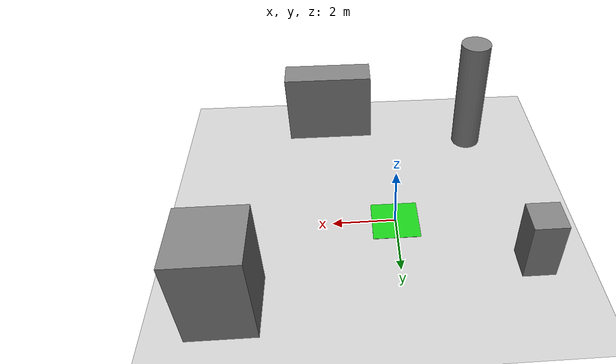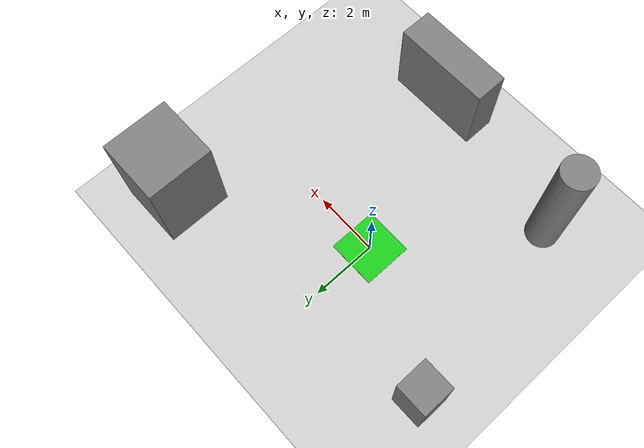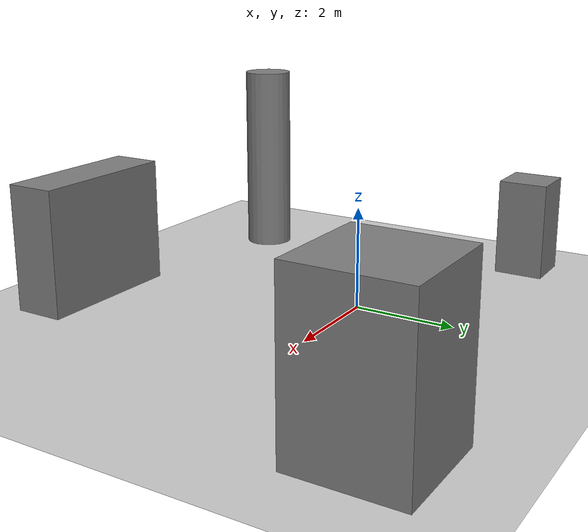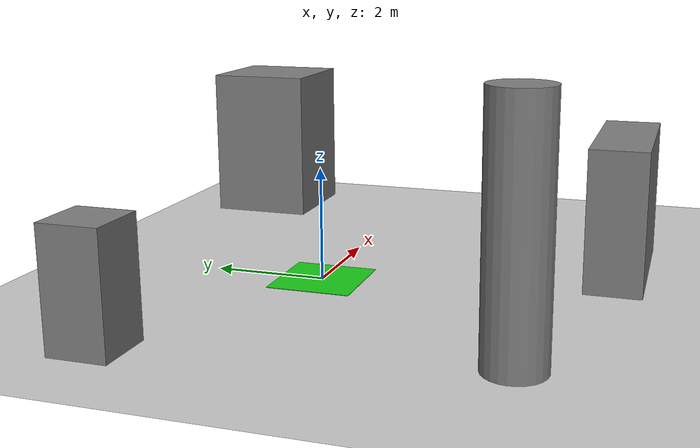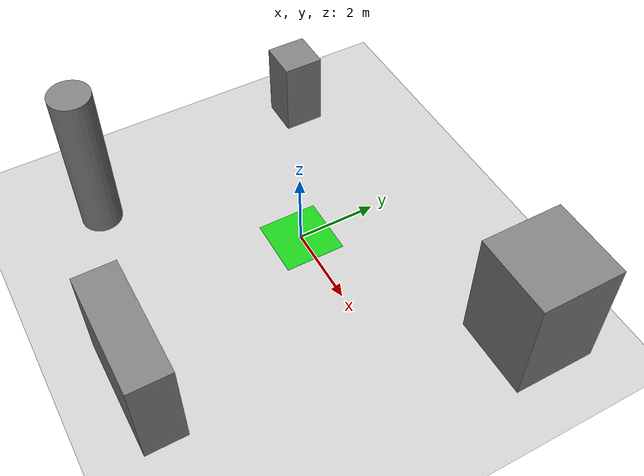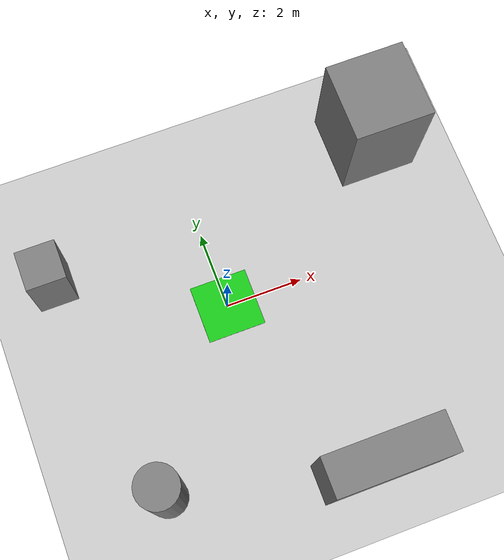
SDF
<?xml version="1.0" ?>
<sdf version="1.9">
  <world name="outdoor_obstacles">

    <!-- Gravity                                                      -->
    <gravity>0 0 -9.81</gravity>

    <!-- Wind: 2 m/s from west (positive X)                           -->
    <wind>
      <linear_velocity>2 0 0</linear_velocity>
    </wind>

    <!-- Physics: DART engine, 0.004 s step (250 Hz)                  -->
    <physics name="dart_physics" type="dart">
      <max_step_size>0.004</max_step_size>
      <real_time_factor>1.0</real_time_factor>
      <real_time_update_rate>250</real_time_update_rate>
    </physics>

    <!-- World-level plugins                                          -->
    <plugin filename="gz-sim-physics-system"
            name="gz::sim::systems::Physics">
    </plugin>

    <plugin filename="gz-sim-scene-broadcaster-system"
            name="gz::sim::systems::SceneBroadcaster">
    </plugin>

    <plugin filename="gz-sim-user-commands-system"
            name="gz::sim::systems::UserCommands">
    </plugin>

    <plugin filename="gz-sim-sensors-system"
            name="gz::sim::systems::Sensors">
      <render_engine>ogre2</render_engine>
    </plugin>

    <plugin filename="gz-sim-imu-system"
            name="gz::sim::systems::Imu">
    </plugin>

    <plugin filename="gz-sim-air-pressure-system"
            name="gz::sim::systems::AirPressure">
    </plugin>

    <plugin filename="gz-sim-wind-effects-system"
            name="gz::sim::systems::WindEffects">
    </plugin>

    <!-- Scene                                                        -->
    <scene>
      <ambient>0.4 0.4 0.4 1</ambient>
      <background>0.7 0.85 1.0 1</background>
      <shadows>true</shadows>
    </scene>

    <!-- Sun (directional light)                                      -->
    <light type="directional" name="sun">
      <cast_shadows>true</cast_shadows>
      <pose>0 0 10 0 0 0</pose>
      <diffuse>0.8 0.8 0.8 1</diffuse>
      <specular>0.2 0.2 0.2 1</specular>
      <attenuation>
        <range>1000</range>
        <constant>0.9</constant>
        <linear>0.01</linear>
        <quadratic>0.001</quadratic>
      </attenuation>
      <direction>-0.5 0.1 -0.9</direction>
    </light>

    <!-- Ground plane: 100 m x 100 m                                  -->
    <model name="ground_plane">
      <static>true</static>
      <link name="link">
        <collision name="collision">
          <geometry>
            <plane>
              <normal>0 0 1</normal>
              <size>100 100</size>
            </plane>
          </geometry>
        </collision>
        <visual name="visual">
          <geometry>
            <plane>
              <normal>0 0 1</normal>
              <size>100 100</size>
            </plane>
          </geometry>
          <material>
            <ambient>0.8 0.8 0.8 1</ambient>
            <diffuse>0.8 0.8 0.8 1</diffuse>
            <specular>0.8 0.8 0.8 1</specular>
          </material>
        </visual>
      </link>
    </model>

    <!-- Landing pad: 1.5 m x 1.5 m green square at origin           -->
    <model name="landing_pad">
      <static>true</static>
      <pose>0 0 0.005 0 0 0</pose>
      <link name="link">
        <collision name="collision">
          <geometry>
            <box>
              <size>1.5 1.5 0.01</size>
            </box>
          </geometry>
        </collision>
        <visual name="visual">
          <geometry>
            <box>
              <size>1.5 1.5 0.01</size>
            </box>
          </geometry>
          <material>
            <ambient>0.1 0.8 0.1 1</ambient>
            <diffuse>0.1 0.8 0.1 1</diffuse>
            <specular>0.1 0.3 0.1 1</specular>
          </material>
        </visual>
      </link>
    </model>

    <!-- Obstacle 1: Box 2 m x 2 m x 3 m at (5, 3, 1.5)             -->
    <model name="obstacle_box_1">
      <static>true</static>
      <pose>5 3 1.5 0 0 0</pose>
      <link name="link">
        <collision name="collision">
          <geometry>
            <box>
              <size>2 2 3</size>
            </box>
          </geometry>
        </collision>
        <visual name="visual">
          <geometry>
            <box>
              <size>2 2 3</size>
            </box>
          </geometry>
          <material>
            <ambient>0.5 0.5 0.5 1</ambient>
            <diffuse>0.5 0.5 0.5 1</diffuse>
            <specular>0.3 0.3 0.3 1</specular>
          </material>
        </visual>
      </link>
    </model>

    <!-- Obstacle 2: Box 1 m x 1 m x 2 m at (-4, 2, 1.0)            -->
    <model name="obstacle_box_2">
      <static>true</static>
      <pose>-4 2 1.0 0 0 0</pose>
      <link name="link">
        <collision name="collision">
          <geometry>
            <box>
              <size>1 1 2</size>
            </box>
          </geometry>
        </collision>
        <visual name="visual">
          <geometry>
            <box>
              <size>1 1 2</size>
            </box>
          </geometry>
          <material>
            <ambient>0.5 0.5 0.5 1</ambient>
            <diffuse>0.5 0.5 0.5 1</diffuse>
            <specular>0.3 0.3 0.3 1</specular>
          </material>
        </visual>
      </link>
    </model>

    <!-- Obstacle 3: Box 3 m x 1 m x 2.5 m at (2, -5, 1.25)         -->
    <model name="obstacle_box_3">
      <static>true</static>
      <pose>2 -5 1.25 0 0 0</pose>
      <link name="link">
        <collision name="collision">
          <geometry>
            <box>
              <size>3 1 2.5</size>
            </box>
          </geometry>
        </collision>
        <visual name="visual">
          <geometry>
            <box>
              <size>3 1 2.5</size>
            </box>
          </geometry>
          <material>
            <ambient>0.5 0.5 0.5 1</ambient>
            <diffuse>0.5 0.5 0.5 1</diffuse>
            <specular>0.3 0.3 0.3 1</specular>
          </material>
        </visual>
      </link>
    </model>

    <!-- Obstacle 4: Cylinder radius 0.5 m, height 4 m at (-3,-4,2)  -->
    <model name="obstacle_cylinder_1">
      <static>true</static>
      <pose>-3 -4 2.0 0 0 0</pose>
      <link name="link">
        <collision name="collision">
          <geometry>
            <cylinder>
              <radius>0.5</radius>
              <length>4</length>
            </cylinder>
          </geometry>
        </collision>
        <visual name="visual">
          <geometry>
            <cylinder>
              <radius>0.5</radius>
              <length>4</length>
            </cylinder>
          </geometry>
          <material>
            <ambient>0.5 0.5 0.5 1</ambient>
            <diffuse>0.5 0.5 0.5 1</diffuse>
            <specular>0.3 0.3 0.3 1</specular>
          </material>
        </visual>
      </link>
    </model>

  </world>
</sdf>
